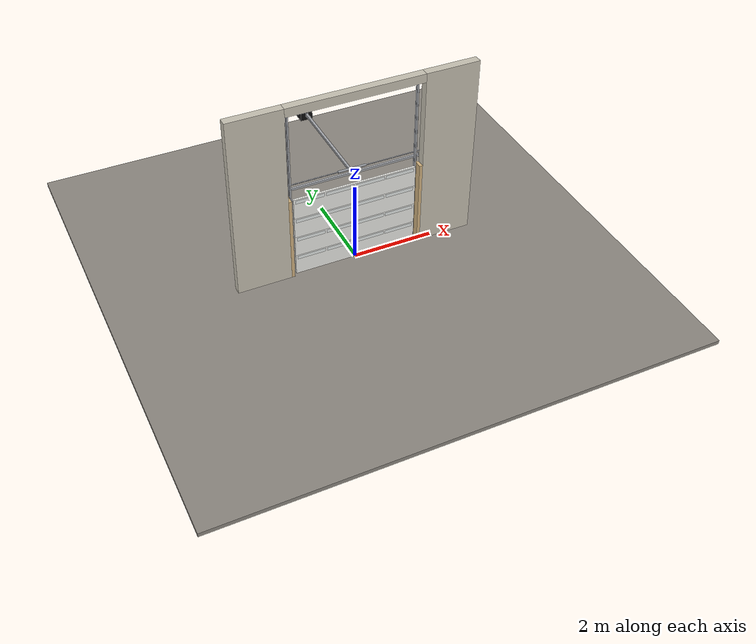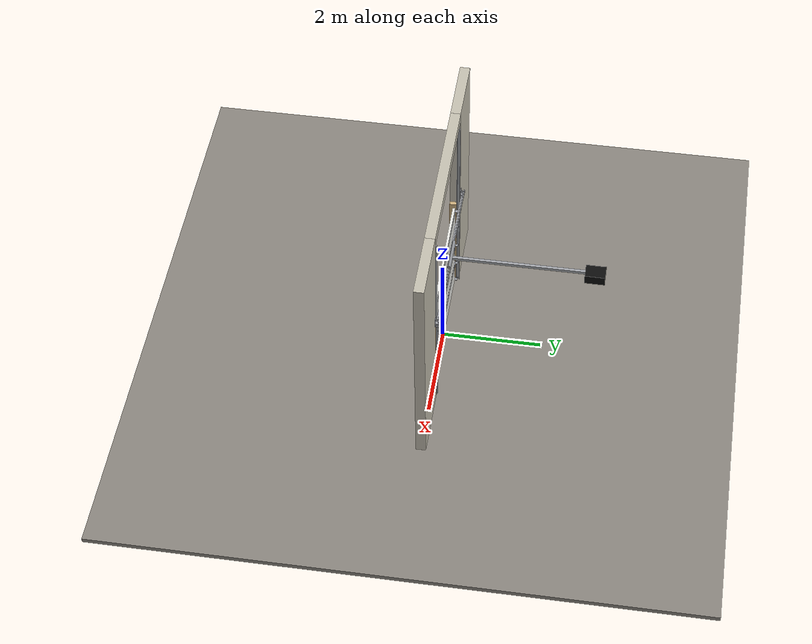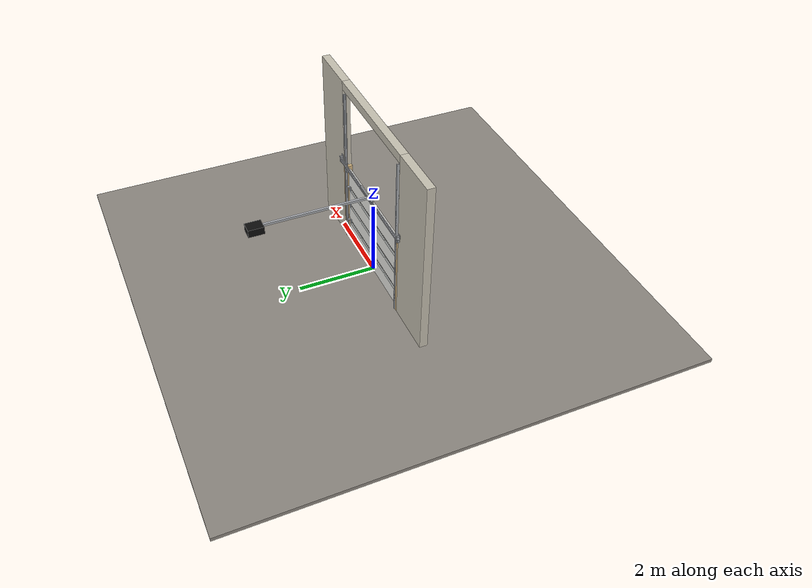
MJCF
<?xml version="1.0" ?>
<mujoco model="db0574_garage_sectional_full">
  <compiler angle="radian" meshdir="../../hardware" texturedir="../../textures" autolimits="true" inertiafromgeom="false"/>
  <option timestep="0.002" integrator="implicitfast" cone="elliptic" impratio="10" noslip_iterations="3">
    <flag multiccd="enable"/>
  </option>
  <size memory="16M"/>
  <default>
    <geom condim="4" solref="0.005 1" solimp="0.95 0.99 0.001"/>
    <joint solreflimit="0.005 1" solimplimit="0.95 0.99 0.001"/>
    <tendon solreflimit="0.005 1"/>
    <equality solref="0.002 1"/>
  </default>
  <visual>
    <headlight ambient="0.4 0.4 0.4" diffuse="0.7 0.7 0.7" specular="0.2 0.2 0.2"/>
    <quality shadowsize="4096"/>
    <map znear="0.01" zfar="60"/>
  </visual>
  <asset>
    <material name="mat_floor" rgba="0.55 0.53 0.5 1" specular="0.2" shininess="0.15" reflectance="0"/>
    <material name="mat_wall" rgba="0.78 0.76 0.7 1" specular="0.2" shininess="0.1" reflectance="0"/>
    <material name="mat_frame" rgba="0.82 0.7 0.5 1" specular="0.2" shininess="0.45" reflectance="0"/>
    <material name="mat_track" rgba="0.65 0.66 0.68 1" specular="0.74" shininess="0.5" reflectance="0.36"/>
    <material name="mat_section_0" rgba="0.93 0.93 0.91 1" specular="0.23" shininess="0.64" reflectance="0.02"/>
    <material name="mat_glass" rgba="0.85 0.92 0.95 0.25" specular="0.2" shininess="0.95" reflectance="0.1"/>
    <material name="mat_section_1" rgba="0.93 0.93 0.91 1" specular="0.23" shininess="0.64" reflectance="0.02"/>
    <material name="mat_hinge_line" rgba="0.2 0.2 0.2 1" specular="0.2" shininess="0.3" reflectance="0"/>
    <material name="mat_section_2" rgba="0.93 0.93 0.91 1" specular="0.23" shininess="0.64" reflectance="0.02"/>
    <material name="mat_section_3" rgba="0.93 0.93 0.91 1" specular="0.23" shininess="0.64" reflectance="0.02"/>
    <material name="mat_spring" rgba="0.55 0.56 0.58 1" specular="0.8" shininess="0.55" reflectance="0.4"/>
    <material name="mat_opener" rgba="0.05 0.05 0.05 1" specular="0.38" shininess="0.3" reflectance="0.12"/>
    <texture name="skybox" type="skybox" builtin="gradient" rgb1="0.6 0.7 0.85" rgb2="0.9 0.92 0.95" width="256" height="256"/>
  </asset>
  <worldbody>
    <light name="sun" pos="1.5 -2.5 4" dir="-0.3 0.5 -0.8" directional="true" diffuse="0.8 0.8 0.8" specular="0.3 0.3 0.3" castshadow="true"/>
    <light name="fill" pos="-1.5 2.5 3" dir="0.3 -0.5 -0.7" directional="true" diffuse="0.35 0.35 0.4" castshadow="false"/>
    <camera name="robot_view" pos="0 -3.53125 2.07875" xyaxes="1 0 0 0 0.26963 0.962964" fovy="52"/>
    <camera name="far_view" pos="0 3.53125 2.07875" xyaxes="-1 0 0 0 -0.26963 0.962964" fovy="52"/>
    <camera name="iso" pos="2.68375 -2.96625 2.64375" xyaxes="0.741536 0.670913 0 -0.242917 0.268487 0.932151" fovy="46"/>
    <camera name="detail_handle" pos="0.55 -1.1 1.25" xyaxes="0.975133 0.221621 0 -0.065674 0.288965 0.955084" fovy="38"/>
    <geom name="floor" type="box" size="6 6 0.05" pos="0 0 -0.05" material="mat_floor" group="0" contype="1" conaffinity="1" friction="0.8 0.005 0.0001" density="2400"/>
    <geom name="wall_left" type="box" size="0.665 0.1 2.305" pos="-2.335 0 2.305" material="mat_wall" group="0" contype="1" conaffinity="1" friction="0.6 0.005 0.0001" density="800"/>
    <geom name="wall_right" type="box" size="0.665 0.1 2.305" pos="2.335 0 2.305" material="mat_wall" group="0" contype="1" conaffinity="1" friction="0.6 0.005 0.0001" density="800"/>
    <geom name="wall_header" type="box" size="1.67 0.1 0.11" pos="0 0 4.5" material="mat_wall" group="0" contype="1" conaffinity="1" friction="0.6 0.005 0.0001" density="800"/>
    <geom name="garage_jamb_l" type="box" size="0.04 0.1 1.09" pos="-1.63 0 1.09" material="mat_frame" group="0" contype="1" conaffinity="1" friction="0.6 0.005 0.0001" density="400"/>
    <geom name="garage_jamb_r" type="box" size="0.04 0.1 1.09" pos="1.63 0 1.09" material="mat_frame" group="0" contype="1" conaffinity="1" friction="0.6 0.005 0.0001" density="400"/>
    <geom name="track_l" type="box" size="0.004 0.033 2.155" pos="-1.575 0.085 2.155" material="mat_track" group="0" contype="1" conaffinity="1" friction="0.6 0.005 0.0001" density="7850"/>
    <geom name="track_l_flange_n" type="box" size="0.022 0.004 2.155" pos="-1.557 0.056 2.155" material="mat_track" group="0" contype="1" conaffinity="1" friction="0.6 0.005 0.0001" density="7850"/>
    <geom name="track_l_flange_p" type="box" size="0.022 0.004 2.155" pos="-1.557 0.114 2.155" material="mat_track" group="0" contype="1" conaffinity="1" friction="0.6 0.005 0.0001" density="7850"/>
    <geom name="track_r" type="box" size="0.004 0.033 2.155" pos="1.575 0.085 2.155" material="mat_track" group="0" contype="1" conaffinity="1" friction="0.6 0.005 0.0001" density="7850"/>
    <geom name="track_r_flange_n" type="box" size="0.022 0.004 2.155" pos="1.557 0.056 2.155" material="mat_track" group="0" contype="1" conaffinity="1" friction="0.6 0.005 0.0001" density="7850"/>
    <geom name="track_r_flange_p" type="box" size="0.022 0.004 2.155" pos="1.557 0.114 2.155" material="mat_track" group="0" contype="1" conaffinity="1" friction="0.6 0.005 0.0001" density="7850"/>
    <geom name="torsion_shaft" type="cylinder" size="0.013 1.78" pos="0 0.17 2.43" quat="0.707107 0 0.707107 0" material="mat_track" group="0" contype="1" conaffinity="1" friction="0.6 0.005 0.0001" density="7850"/>
    <geom name="torsion_spring" type="cylinder" size="0.03 0.35" pos="0 0.17 2.43" quat="0.707107 0 0.707107 0" material="mat_spring" group="1" contype="0" conaffinity="0" density="7850"/>
    <geom name="torsion_bearing_plate_l" type="box" size="0.055 0.004 0.055" pos="-1.73 0.104 2.43" material="mat_track" group="1" contype="0" conaffinity="0" density="7850"/>
    <geom name="torsion_bearing_arm_l" type="box" size="0.008 0.049 0.03" pos="-1.73 0.139 2.43" material="mat_track" group="1" contype="0" conaffinity="0" density="7850"/>
    <geom name="torsion_bearing_plate_r" type="box" size="0.055 0.004 0.055" pos="1.73 0.104 2.43" material="mat_track" group="1" contype="0" conaffinity="0" density="7850"/>
    <geom name="torsion_bearing_arm_r" type="box" size="0.008 0.049 0.03" pos="1.73 0.139 2.43" material="mat_track" group="1" contype="0" conaffinity="0" density="7850"/>
    <geom name="opener_header_angle" type="box" size="1.785 0.025 0.025" pos="0 0.145 2.33" material="mat_track" group="1" contype="0" conaffinity="0" density="7850"/>
    <geom name="opener_header_gusset_l" type="box" size="0.05 0.035 0.05" pos="-1.73 0.135 2.33" material="mat_track" group="1" contype="0" conaffinity="0" density="7850"/>
    <geom name="opener_header_gusset_r" type="box" size="0.05 0.035 0.05" pos="1.73 0.135 2.33" material="mat_track" group="1" contype="0" conaffinity="0" density="7850"/>
    <geom name="opener_rail" type="box" size="0.03 1.44 0.03" pos="0 1.56 2.33" material="mat_track" group="0" contype="1" conaffinity="1" friction="0.6 0.005 0.0001" density="7850"/>
    <geom name="opener_unit" type="box" size="0.15 0.2 0.1" pos="0 3 2.28" material="mat_opener" group="0" contype="1" conaffinity="1" friction="0.6 0.005 0.0001" density="500"/>
    <site name="approach_point" pos="0 -2 0" quat="1 0 0 0" size="0.05" rgba="0.2 0.9 0.2 0.5" group="4"/>
    <site name="goal_point" pos="0 2 0" quat="1 0 0 0" size="0.05" rgba="0.2 0.9 0.2 0.5" group="4"/>
    <site name="door_plane_center" pos="0 0 1.09" quat="1 0 0 0" size="0.02" rgba="0.2 0.9 0.2 0.5" group="4"/>
    <body name="door" pos="0 0 0">
      <inertial pos="0 0.008886 1.074677" mass="84.203735" quat="0.707132 -0.707081 0 0" diaginertia="30.980179473 80.049578294 110.926937046"/>
      <joint name="door_slide" type="slide" axis="0 0 1" limited="true" range="0 2.08" damping="6.210187" frictionloss="21.469671" stiffness="113.183179" springref="6.933333" armature="0.5"/>
      <geom name="section_0_slab" type="box" size="1.525 0.025 0.26625" pos="0 0 0.27625" material="mat_section_0" group="0" contype="1" conaffinity="1" friction="0.4 0.005 0.0001" density="1"/>
      <geom name="section_0_glass_0" type="box" size="0.35375 0.0258 0.0426" pos="-1.12125 0 0.46795" material="mat_glass" group="1" contype="0" conaffinity="0" density="1"/>
      <geom name="section_0_glass_1" type="box" size="0.35375 0.0258 0.0426" pos="-0.37375 0 0.46795" material="mat_glass" group="1" contype="0" conaffinity="0" density="1"/>
      <geom name="section_0_glass_2" type="box" size="0.35375 0.0258 0.0426" pos="0.37375 0 0.46795" material="mat_glass" group="1" contype="0" conaffinity="0" density="1"/>
      <geom name="section_0_glass_3" type="box" size="0.35375 0.0258 0.0426" pos="1.12125 0 0.46795" material="mat_glass" group="1" contype="0" conaffinity="0" density="1"/>
      <geom name="section_1_slab" type="box" size="1.525 0.025 0.26625" pos="0 0 0.80875" material="mat_section_1" group="0" contype="1" conaffinity="1" friction="0.4 0.005 0.0001" density="1"/>
      <geom name="section_1_glass_0" type="box" size="0.35375 0.0258 0.0426" pos="-1.12125 0 1.00045" material="mat_glass" group="1" contype="0" conaffinity="0" density="1"/>
      <geom name="section_1_glass_1" type="box" size="0.35375 0.0258 0.0426" pos="-0.37375 0 1.00045" material="mat_glass" group="1" contype="0" conaffinity="0" density="1"/>
      <geom name="section_1_glass_2" type="box" size="0.35375 0.0258 0.0426" pos="0.37375 0 1.00045" material="mat_glass" group="1" contype="0" conaffinity="0" density="1"/>
      <geom name="section_1_glass_3" type="box" size="0.35375 0.0258 0.0426" pos="1.12125 0 1.00045" material="mat_glass" group="1" contype="0" conaffinity="0" density="1"/>
      <geom name="section_hinge_line_1" type="box" size="1.505 0.001 0.004" pos="0 0.026 0.5425" material="mat_hinge_line" group="1" contype="0" conaffinity="0" density="1"/>
      <geom name="section_hinge_1_162" type="box" size="0.04 0.01 0.05" pos="-1.425 0.035 0.5425" material="mat_track" group="1" contype="0" conaffinity="0" density="7850"/>
      <geom name="section_hinge_1_305" type="box" size="0.04 0.01 0.05" pos="0 0.035 0.5425" material="mat_track" group="1" contype="0" conaffinity="0" density="7850"/>
      <geom name="section_hinge_1_447" type="box" size="0.04 0.01 0.05" pos="1.425 0.035 0.5425" material="mat_track" group="1" contype="0" conaffinity="0" density="7850"/>
      <geom name="section_2_slab" type="box" size="1.525 0.025 0.26625" pos="0 0 1.34125" material="mat_section_2" group="0" contype="1" conaffinity="1" friction="0.4 0.005 0.0001" density="1"/>
      <geom name="section_2_glass_0" type="box" size="0.35375 0.0258 0.0426" pos="-1.12125 0 1.53295" material="mat_glass" group="1" contype="0" conaffinity="0" density="1"/>
      <geom name="section_2_glass_1" type="box" size="0.35375 0.0258 0.0426" pos="-0.37375 0 1.53295" material="mat_glass" group="1" contype="0" conaffinity="0" density="1"/>
      <geom name="section_2_glass_2" type="box" size="0.35375 0.0258 0.0426" pos="0.37375 0 1.53295" material="mat_glass" group="1" contype="0" conaffinity="0" density="1"/>
      <geom name="section_2_glass_3" type="box" size="0.35375 0.0258 0.0426" pos="1.12125 0 1.53295" material="mat_glass" group="1" contype="0" conaffinity="0" density="1"/>
      <geom name="section_hinge_line_2" type="box" size="1.505 0.001 0.004" pos="0 0.026 1.075" material="mat_hinge_line" group="1" contype="0" conaffinity="0" density="1"/>
      <geom name="section_hinge_2_162" type="box" size="0.04 0.01 0.05" pos="-1.425 0.035 1.075" material="mat_track" group="1" contype="0" conaffinity="0" density="7850"/>
      <geom name="section_hinge_2_305" type="box" size="0.04 0.01 0.05" pos="0 0.035 1.075" material="mat_track" group="1" contype="0" conaffinity="0" density="7850"/>
      <geom name="section_hinge_2_447" type="box" size="0.04 0.01 0.05" pos="1.425 0.035 1.075" material="mat_track" group="1" contype="0" conaffinity="0" density="7850"/>
      <geom name="section_3_slab" type="box" size="1.525 0.025 0.26625" pos="0 0 1.87375" material="mat_section_3" group="0" contype="1" conaffinity="1" friction="0.4 0.005 0.0001" density="1"/>
      <geom name="section_3_glass_0" type="box" size="0.35375 0.0258 0.0426" pos="-1.12125 0 2.06545" material="mat_glass" group="1" contype="0" conaffinity="0" density="1"/>
      <geom name="section_3_glass_1" type="box" size="0.35375 0.0258 0.0426" pos="-0.37375 0 2.06545" material="mat_glass" group="1" contype="0" conaffinity="0" density="1"/>
      <geom name="section_3_glass_2" type="box" size="0.35375 0.0258 0.0426" pos="0.37375 0 2.06545" material="mat_glass" group="1" contype="0" conaffinity="0" density="1"/>
      <geom name="section_3_glass_3" type="box" size="0.35375 0.0258 0.0426" pos="1.12125 0 2.06545" material="mat_glass" group="1" contype="0" conaffinity="0" density="1"/>
      <geom name="section_hinge_line_3" type="box" size="1.505 0.001 0.004" pos="0 0.026 1.6075" material="mat_hinge_line" group="1" contype="0" conaffinity="0" density="1"/>
      <geom name="section_hinge_3_162" type="box" size="0.04 0.01 0.05" pos="-1.425 0.035 1.6075" material="mat_track" group="1" contype="0" conaffinity="0" density="7850"/>
      <geom name="section_hinge_3_305" type="box" size="0.04 0.01 0.05" pos="0 0.035 1.6075" material="mat_track" group="1" contype="0" conaffinity="0" density="7850"/>
      <geom name="section_hinge_3_447" type="box" size="0.04 0.01 0.05" pos="1.425 0.035 1.6075" material="mat_track" group="1" contype="0" conaffinity="0" density="7850"/>
      <geom name="roller_l_0" type="cylinder" size="0.025 0.01" pos="-1.555 0.085 0.04" quat="0.707107 0 0.707107 0" material="mat_track" group="1" contype="0" conaffinity="0" density="7850"/>
      <geom name="roller_stem_l_0" type="cylinder" size="0.006 0.027" pos="-1.53 0.085 0.04" quat="0.707107 0 0.707107 0" material="mat_track" group="1" contype="0" conaffinity="0" density="7850"/>
      <geom name="roller_arm_l_0" type="box" size="0.03 0.03 0.006" pos="-1.505 0.055 0.04" material="mat_track" group="1" contype="0" conaffinity="0" density="7850"/>
      <geom name="roller_l_1" type="cylinder" size="0.025 0.01" pos="-1.555 0.085 0.5425" quat="0.707107 0 0.707107 0" material="mat_track" group="1" contype="0" conaffinity="0" density="7850"/>
      <geom name="roller_stem_l_1" type="cylinder" size="0.006 0.027" pos="-1.53 0.085 0.5425" quat="0.707107 0 0.707107 0" material="mat_track" group="1" contype="0" conaffinity="0" density="7850"/>
      <geom name="roller_arm_l_1" type="box" size="0.03 0.03 0.006" pos="-1.505 0.055 0.5425" material="mat_track" group="1" contype="0" conaffinity="0" density="7850"/>
      <geom name="roller_l_2" type="cylinder" size="0.025 0.01" pos="-1.555 0.085 1.075" quat="0.707107 0 0.707107 0" material="mat_track" group="1" contype="0" conaffinity="0" density="7850"/>
      <geom name="roller_stem_l_2" type="cylinder" size="0.006 0.027" pos="-1.53 0.085 1.075" quat="0.707107 0 0.707107 0" material="mat_track" group="1" contype="0" conaffinity="0" density="7850"/>
      <geom name="roller_arm_l_2" type="box" size="0.03 0.03 0.006" pos="-1.505 0.055 1.075" material="mat_track" group="1" contype="0" conaffinity="0" density="7850"/>
      <geom name="roller_l_3" type="cylinder" size="0.025 0.01" pos="-1.555 0.085 1.6075" quat="0.707107 0 0.707107 0" material="mat_track" group="1" contype="0" conaffinity="0" density="7850"/>
      <geom name="roller_stem_l_3" type="cylinder" size="0.006 0.027" pos="-1.53 0.085 1.6075" quat="0.707107 0 0.707107 0" material="mat_track" group="1" contype="0" conaffinity="0" density="7850"/>
      <geom name="roller_arm_l_3" type="box" size="0.03 0.03 0.006" pos="-1.505 0.055 1.6075" material="mat_track" group="1" contype="0" conaffinity="0" density="7850"/>
      <geom name="roller_l_4" type="cylinder" size="0.025 0.01" pos="-1.555 0.085 2.08" quat="0.707107 0 0.707107 0" material="mat_track" group="1" contype="0" conaffinity="0" density="7850"/>
      <geom name="roller_stem_l_4" type="cylinder" size="0.006 0.027" pos="-1.53 0.085 2.08" quat="0.707107 0 0.707107 0" material="mat_track" group="1" contype="0" conaffinity="0" density="7850"/>
      <geom name="roller_arm_l_4" type="box" size="0.03 0.03 0.006" pos="-1.505 0.055 2.08" material="mat_track" group="1" contype="0" conaffinity="0" density="7850"/>
      <geom name="roller_r_0" type="cylinder" size="0.025 0.01" pos="1.555 0.085 0.04" quat="0.707107 0 0.707107 0" material="mat_track" group="1" contype="0" conaffinity="0" density="7850"/>
      <geom name="roller_stem_r_0" type="cylinder" size="0.006 0.027" pos="1.53 0.085 0.04" quat="0.707107 0 0.707107 0" material="mat_track" group="1" contype="0" conaffinity="0" density="7850"/>
      <geom name="roller_arm_r_0" type="box" size="0.03 0.03 0.006" pos="1.505 0.055 0.04" material="mat_track" group="1" contype="0" conaffinity="0" density="7850"/>
      <geom name="roller_r_1" type="cylinder" size="0.025 0.01" pos="1.555 0.085 0.5425" quat="0.707107 0 0.707107 0" material="mat_track" group="1" contype="0" conaffinity="0" density="7850"/>
      <geom name="roller_stem_r_1" type="cylinder" size="0.006 0.027" pos="1.53 0.085 0.5425" quat="0.707107 0 0.707107 0" material="mat_track" group="1" contype="0" conaffinity="0" density="7850"/>
      <geom name="roller_arm_r_1" type="box" size="0.03 0.03 0.006" pos="1.505 0.055 0.5425" material="mat_track" group="1" contype="0" conaffinity="0" density="7850"/>
      <geom name="roller_r_2" type="cylinder" size="0.025 0.01" pos="1.555 0.085 1.075" quat="0.707107 0 0.707107 0" material="mat_track" group="1" contype="0" conaffinity="0" density="7850"/>
      <geom name="roller_stem_r_2" type="cylinder" size="0.006 0.027" pos="1.53 0.085 1.075" quat="0.707107 0 0.707107 0" material="mat_track" group="1" contype="0" conaffinity="0" density="7850"/>
      <geom name="roller_arm_r_2" type="box" size="0.03 0.03 0.006" pos="1.505 0.055 1.075" material="mat_track" group="1" contype="0" conaffinity="0" density="7850"/>
      <geom name="roller_r_3" type="cylinder" size="0.025 0.01" pos="1.555 0.085 1.6075" quat="0.707107 0 0.707107 0" material="mat_track" group="1" contype="0" conaffinity="0" density="7850"/>
      <geom name="roller_stem_r_3" type="cylinder" size="0.006 0.027" pos="1.53 0.085 1.6075" quat="0.707107 0 0.707107 0" material="mat_track" group="1" contype="0" conaffinity="0" density="7850"/>
      <geom name="roller_arm_r_3" type="box" size="0.03 0.03 0.006" pos="1.505 0.055 1.6075" material="mat_track" group="1" contype="0" conaffinity="0" density="7850"/>
      <geom name="roller_r_4" type="cylinder" size="0.025 0.01" pos="1.555 0.085 2.08" quat="0.707107 0 0.707107 0" material="mat_track" group="1" contype="0" conaffinity="0" density="7850"/>
      <geom name="roller_stem_r_4" type="cylinder" size="0.006 0.027" pos="1.53 0.085 2.08" quat="0.707107 0 0.707107 0" material="mat_track" group="1" contype="0" conaffinity="0" density="7850"/>
      <geom name="roller_arm_r_4" type="box" size="0.03 0.03 0.006" pos="1.505 0.055 2.08" material="mat_track" group="1" contype="0" conaffinity="0" density="7850"/>
    </body>
  </worldbody>
  <sensor>
    <jointpos name="door_slide_pos" joint="door_slide"/>
    <jointvel name="door_slide_vel" joint="door_slide"/>
  </sensor>
</mujoco>
